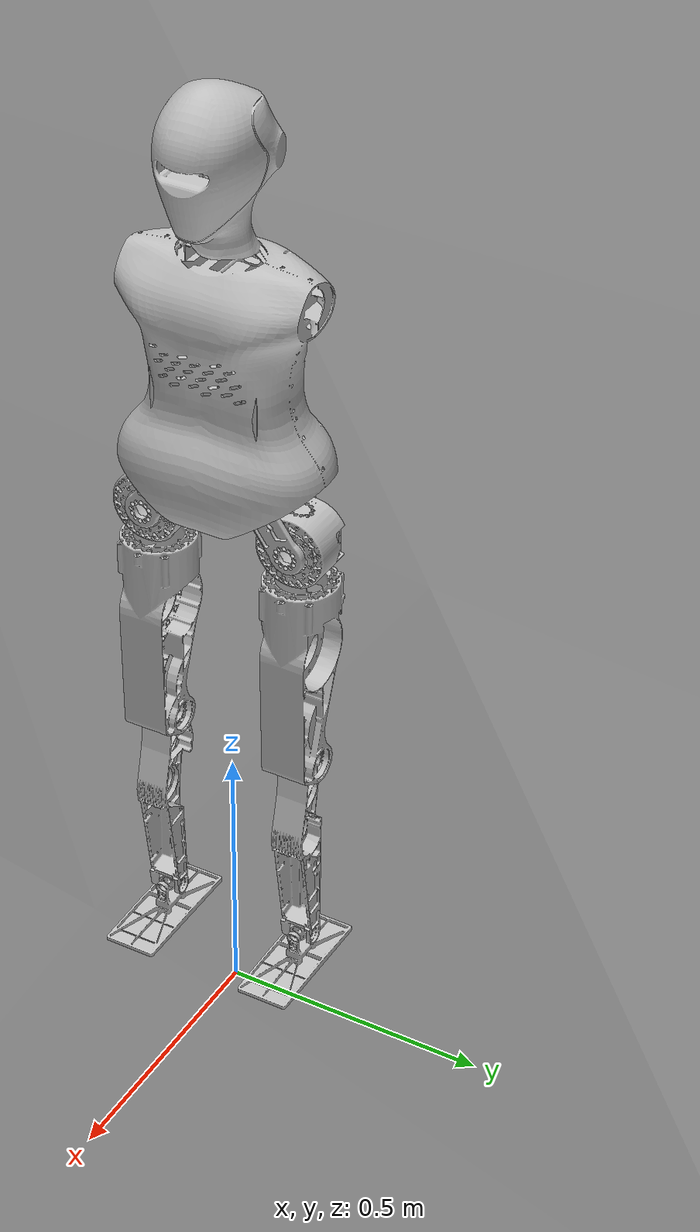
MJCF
<mujoco model="XX_Humanoid">
  <compiler angle="radian" meshdir="meshes_L1/" autolimits="true"  convexhull="false"/>
  <option timestep="0.001" gravity="0 0 -9.81" iterations="50" tolerance="1e-10" solver="Newton" jacobian="dense" cone="pyramidal"/>

  <statistic meansize="0.167964" extent="1.90457" center="0.00846134 -1.34359e-05 -0.259324"/>

  <default>
    <geom condim="1" type="mesh" />
    <joint limited="true" damping="0.01" frictionloss="0.01" armature="0.01" pos="0 0 0" />
    <motor ctrllimited="false" forcelimited="false" />
    <default class="collision">
      <geom condim="3" group="0" contype="1" conaffinity="15" solref='0.001 2' friction='0.9 0.2 0.2'/>
    </default>
    <default class="visual">
      <geom group="1" conaffinity="0" contype="0" />
    </default>
    <default class='leg_joint_param'>
      <joint  damping="0.01" frictionloss="0.01" armature="0.01"/>
    </default>
  </default>

  <asset>
    <mesh name="base_link" file="base_link.STL"/>
    <mesh name="LL1" file="LL1.STL"/>
    <mesh name="LL2" file="LL2.STL"/>
    <mesh name="LL3" file="LL3.STL"/>
    <mesh name="LL4" file="LL4.STL"/>
    <mesh name="LL5" file="LL5.STL"/>
    <mesh name="LL6" file="LL6.STL"/>
    <mesh name="LR1" file="LR1.STL"/>
    <mesh name="LR2" file="LR2.STL"/>
    <mesh name="LR3" file="LR3.STL"/>
    <mesh name="LR4" file="LR4.STL"/>
    <mesh name="LR5" file="LR5.STL"/>
    <mesh name="LR6" file="LR6.STL"/>

    <mesh name="plane_terrain" file="TuQiDiMian_BoLang_stl.stl" scale="0.1 0.1 0.1" smoothnormal='false'/>

    <texture type="skybox" builtin="gradient" rgb1="0.3 0.5 0.7" rgb2="0 0 0" width="512" height="512"/>
    <texture name="texplane" type="2d" builtin="checker" rgb1=".2 .3 .4" rgb2=".1 0.15 0.2"
        width="512" height="512" mark="cross" markrgb=".8 .8 .8"/>
    <texture name="texplane2" type="2d" builtin="checker" rgb1="1 0.3137 0.1843" rgb2="0.0 0.30196 0.38039"
        width="512" height="512" mark="cross" markrgb=".8 .8 .8"/>

    <material name="matplane" reflectance="0." texture="texplane" texrepeat="1 1" texuniform="true"/>
    <material name="matplane2" reflectance="0.1" texture="texplane2" texrepeat="1 1" texuniform="true"/>

  </asset>

  <worldbody>
    <light directional="true" diffuse=".4 .4 .4" specular="0.1 0.1 0.1" pos="0 0 5.0" dir="0 0 -1" castshadow="false"/>
    <light directional="true" diffuse=".6 .6 .6" specular="0.2 0.2 0.2" pos="0 0 4" dir="0 0 -1"/>
    <geom name="ground" type="mesh" pos="0.001 0 -2.0" quat="1 0 0 0" mesh="plane_terrain" condim="1" conaffinity='15'/>

    <body name="torso" pos="0 0 1.18" euler="0 0 0" >
      <freejoint name="root" />
      <geom type="mesh" contype="0" conaffinity="0" group="1" density="0" rgba="0.75294 0.75294 0.75294 1" mesh="base_link"/>
      <geom size="0.075 0.1 0.1" pos="0 0 0.15" type="box" mass="11.06852009" rgba="0.75294 0.75294 0.75294 1"/>
      <site name='imu' size='0.01' pos='0.0 0 0.0'/>
      <body name="leg_l1_link" pos="0 0.090386 -0.091358">
        <inertial pos="0.00402267 0.0229258 -0.0327414" quat="0.189769 0.681166 0.449136 0.546148" mass="0.337583" diaginertia="0.0010967 0.00076856 0.000568251"/>
        <joint name="leg_l1_joint" pos="0 0 0" axis="0 -0.57358 0.81915" range="-1.815 1.728" class="leg_joint_param"/>
        <geom type="mesh" contype="0" conaffinity="0" group="1" density="0" rgba="0.75294 0.75294 0.75294 1" mesh="LL1"/>
        <body name="leg_l2_link" pos="0 0.049614 -0.070857">
          <inertial pos="0.00639226 9.576e-05 -0.0033657" quat="0.9972 0.00211166 0.0747515 -0.000227369" mass="2.05978" diaginertia="0.00332488 0.00275554 0.0023486"/>
          <joint name="leg_l2_joint" pos="0 0 0" axis="1 0 0" range="-1.134 1.309" class="leg_joint_param"/>
          <geom type="mesh" contype="0" conaffinity="0" group="1" density="0" rgba="0.75294 0.75294 0.75294 1" mesh="LL2"/>
          <body name="leg_l3_link" pos="0 0 -0.075">
            <inertial pos="0.00302429 0.00846589 -0.127734" quat="0.939571 -0.00709148 -0.0359986 0.340383" mass="5.34674" diaginertia="0.0595886 0.0589714 0.0102521"/>
            <joint name="leg_l3_joint" pos="0 0 0" axis="0 0 1" range="-1.396 1.396" class="leg_joint_param"/>
            <geom type="mesh" contype="0" conaffinity="0" group="1" density="0" rgba="0.75294 0.75294 0.75294 1" mesh="LL3"/>
            <body name="leg_l4_link" pos="0 0 -0.375">
              <inertial pos="-0.00054298 -5.372e-05 -0.159495" quat="0.762608 0.00275954 0.00364869 0.646844" mass="2.64088" diaginertia="0.0335491 0.0330326 0.00261633"/>
              <joint name="leg_l4_joint" pos="0 0 0" axis="0 1 0" range="0 2.443" class="leg_joint_param"/>
              <geom type="mesh" contype="0" conaffinity="0" group="1" density="0" rgba="0.75294 0.75294 0.75294 1" mesh="LL4"/>
              <body name="leg_l5_link" pos="0 0 -0.4">
                <inertial pos="0 0 0" quat="0.707107 0.707107 0 0" mass="0.0349403" diaginertia="5.53e-06 3.98e-06 3.79e-06"/>
                <joint name="leg_l5_joint" pos="0 0 0" axis="0 1 0" range="-1.047 0.523" class="leg_joint_param"/>
                <geom type="mesh" contype="0" conaffinity="0" group="1" density="0" rgba="0.75294 0.75294 0.75294 1" mesh="LL5"/>
                <body name="leg_l6_link">
                  <inertial pos="0.0117187 0 -0.0463114" quat="-1.30199e-06 0.722937 1.24432e-06 0.690914" mass="0.789063" diaginertia="0.00397665 0.00361695 0.000843517"/>
                  <joint name="leg_l6_joint" pos="0 0 0" axis="1 0 0" range="-0.611 0.611" class="leg_joint_param"/>
                  <geom type="mesh" rgba="0.75294 0.75294 0.75294 1" mesh="LL6" class="collision"/>
                </body>
              </body>
            </body>
          </body>
        </body>
      </body>
      <body name="leg_r1_link" pos="0 -0.090386 -0.091358">
        <inertial pos="0.00390365 -0.0231017 -0.0329926" quat="0.542016 0.454116 0.682876 0.183514" mass="0.344413" diaginertia="0.00112457 0.000793277 0.000573665"/>
        <joint name="leg_r1_joint" pos="0 0 0" axis="0 0.57358 0.81915" range="-1.728 1.815" class="leg_joint_param"/>
        <geom type="mesh" contype="0" conaffinity="0" group="1" density="0" rgba="0.75294 0.75294 0.75294 1" mesh="LR1"/>
        <body name="leg_r2_link" pos="0 -0.049614 -0.070857">
          <inertial pos="0.00639226 9.576e-05 -0.0033657" quat="0.9972 0.00211166 0.0747515 -0.000227369" mass="2.05978" diaginertia="0.00332488 0.00275554 0.0023486"/>
          <joint name="leg_r2_joint" pos="0 0 0" axis="1 0 0" range="-1.309 1.134" class="leg_joint_param"/>
          <geom type="mesh" contype="0" conaffinity="0" group="1" density="0" rgba="0.75294 0.75294 0.75294 1" mesh="LR2"/>
          <body name="leg_r3_link" pos="0 0 -0.075">
            <inertial pos="0.00397633 -0.00860638 -0.128128" quat="0.940183 0.00473165 -0.0335944 -0.338977" mass="5.40515" diaginertia="0.0607775 0.0601185 0.0104193"/>
            <joint name="leg_r3_joint" pos="0 0 0" axis="0 0 1" range="-1.396 1.396" class="leg_joint_param"/>
            <geom type="mesh" contype="0" conaffinity="0" group="1" density="0" rgba="0.75294 0.75294 0.75294 1" mesh="LR3"/>
            <body name="leg_r4_link" pos="0 0 -0.375">
              <inertial pos="-0.00074804 4.31e-06 -0.157944" quat="0.65366 0.00589719 0.0031342 0.756758" mass="2.64058" diaginertia="0.0320163 0.0313901 0.00273184"/>
              <joint name="leg_r4_joint" pos="0 0 0" axis="0 1 0" range="0 2.443" class="leg_joint_param"/>
              <geom type="mesh" contype="0" conaffinity="0" group="1" density="0" rgba="0.75294 0.75294 0.75294 1" mesh="LR4"/>
              <body name="leg_r5_link" pos="0 0 -0.4">
                <inertial pos="0 0 0" quat="0.707107 0.707107 0 0" mass="0.0349403" diaginertia="5.53e-06 3.98e-06 3.79e-06"/>
                <joint name="leg_r5_joint" pos="0 0 0" axis="0 1 0" range="-1.047 0.523" class="leg_joint_param"/>
                <geom type="mesh" contype="0" conaffinity="0" group="1" density="0" rgba="0.75294 0.75294 0.75294 1" mesh="LR5"/>
                <body name="leg_r6_link">
                  <inertial pos="0.0117187 0 -0.0463114" quat="-1.30199e-06 0.722937 1.24432e-06 0.690914" mass="0.789063" diaginertia="0.00397665 0.00361695 0.000843517"/>
                  <joint name="leg_r6_joint" pos="0 0 0" axis="1 0 0" range="-0.611 0.611" class="leg_joint_param"/>
                  <geom type="mesh" rgba="0.75294 0.75294 0.75294 1" mesh="LR6" class="collision"/>
                </body>
              </body>
            </body>
          </body>
        </body>
      </body>
    </body>
  </worldbody>

  <actuator>
		<motor name="leg_l1_joint" joint="leg_l1_joint"/>
		<motor name="leg_l2_joint" joint="leg_l2_joint"/>
		<motor name="leg_l3_joint" joint="leg_l3_joint"/>
		<motor name="leg_l4_joint" joint="leg_l4_joint"/>
    <motor name="leg_l5_joint" joint="leg_l5_joint"/>
    <motor name="leg_l6_joint" joint="leg_l6_joint"/>

		<motor name="leg_r1_joint" joint="leg_r1_joint"/>
		<motor name="leg_r2_joint" joint="leg_r2_joint"/>
		<motor name="leg_r3_joint" joint="leg_r3_joint"/>
		<motor name="leg_r4_joint" joint="leg_r4_joint"/>
    <motor name="leg_r5_joint" joint="leg_r5_joint"/>
    <motor name="leg_r6_joint" joint="leg_r6_joint"/>
	</actuator>

  <sensor>
    <framequat     name='orientation' objtype='site' noise='0.001' objname='imu'/>
    <framepos     name='position' objtype='site' noise='0.001' objname='imu'/>
    <gyro          name='angular-velocity'    site='imu' noise='0.005' cutoff='34.9'/>
    <velocimeter   name='linear-velocity'     site='imu' noise='0.001' cutoff='30'/>
    <accelerometer name='linear-acceleration' site='imu' noise='0.005' cutoff='157'/>
    <magnetometer  name='magnetometer'        site='imu'/>
  </sensor>
</mujoco>
